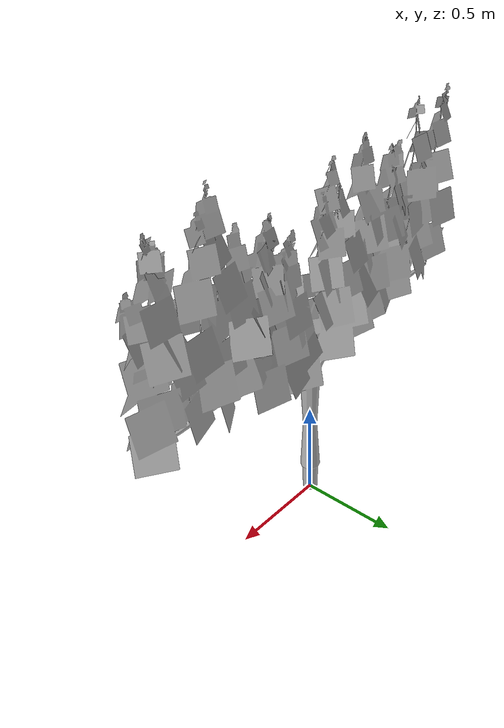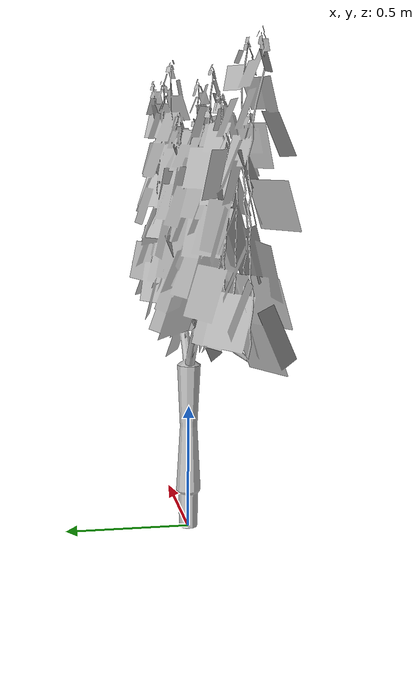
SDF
<?xml version="1.0" ?>
<sdf version="1.5">
  <model name="Grapevine">
    <static>true</static>
    <link name="link">
      <collision name="collision">
        <geometry>
          <mesh>
            <uri>model://grape_vine/meshes/grapevine.dae</uri>
          </mesh>
        </geometry>
      </collision>
      <visual name="visual">
        <geometry>
          <mesh>
            <uri>model://grape_vine/meshes/grapevine.dae</uri>
          </mesh>
        </geometry>
      </visual>
    </link>
  </model>
</sdf>
